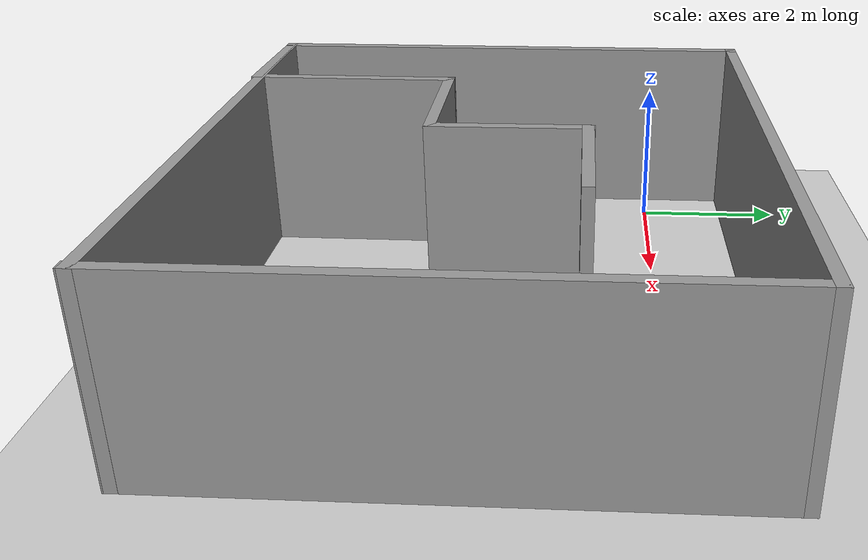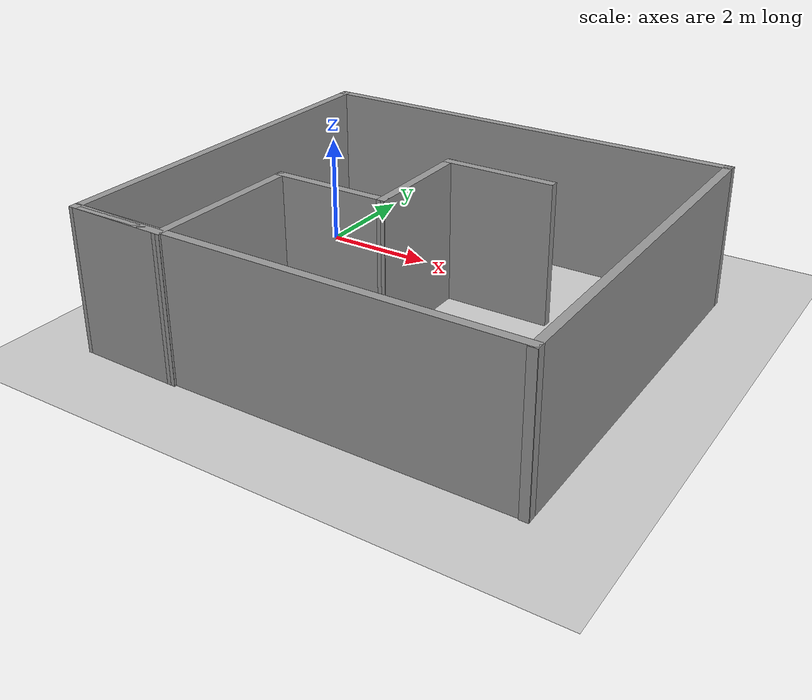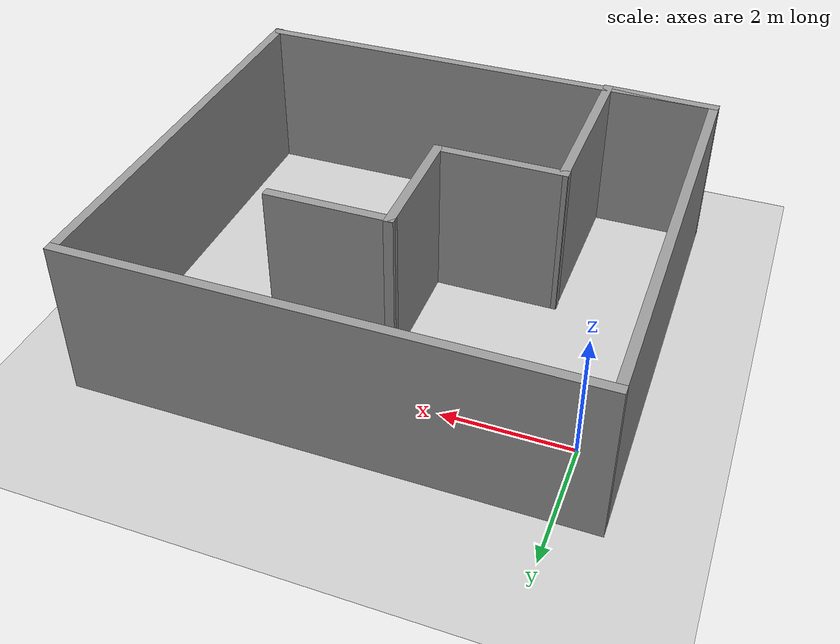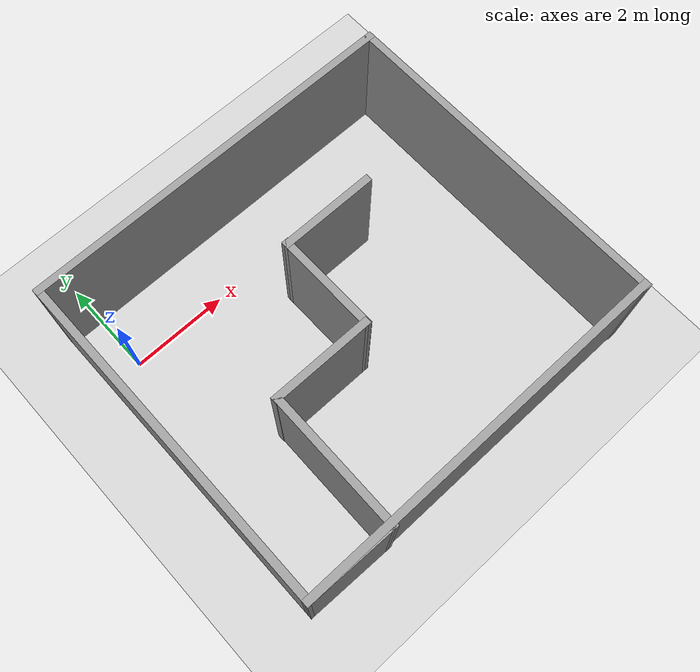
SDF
<sdf version="1.7">
 <world name="default">
  <light name="sun" type="directional">
   <pose>0 0 10 0 -0 0</pose>
   <diffuse>0.8 0.8 0.8 1</diffuse>
   <specular>0.2 0.2 0.2 1</specular>
   <attenuation>
    <range>1000</range>
    <constant>0.9</constant>
    <linear>0.01</linear>
    <quadratic>0.001</quadratic>
   </attenuation>
   <direction>-0.5 0.1 -0.9</direction>
   <spot><inner_angle>0</inner_angle><outer_angle>0</outer_angle><falloff>0</falloff></spot>
  </light>
  <model name="ground_plane">
   <static>1</static>
   <link name="link">
    <collision name="collision">
     <geometry><plane><normal>0 0 1</normal><size>100 100</size></plane></geometry>
     <surface>
      <contact><collide_bitmask>65535</collide_bitmask></contact>
      <friction><ode><mu>100</mu><mu2>50</mu2></ode></friction>
     </surface>
    </collision>
    <visual name="visual">
     <cast_shadows>0</cast_shadows>
     <geometry><plane><normal>0 0 1</normal><size>100 100</size></plane></geometry>
     <material>
      <script><uri>file://media/materials/scripts/gazebo.material</uri><name>Gazebo/Grey</name></script>
     </material>
    </visual>
   </link>
  </model>
  <gravity>0 0 -9.8</gravity>
  <magnetic_field>6e-06 2.3e-05 -4.2e-05</magnetic_field>
  <atmosphere type="adiabatic"/>
  <physics type="ode">
   <max_step_size>0.001</max_step_size>
   <real_time_factor>1</real_time_factor>
   <real_time_update_rate>1000</real_time_update_rate>
  </physics>
  <scene><ambient>0.4 0.4 0.4 1</ambient><background>0.7 0.7 0.7 1</background><shadows>1</shadows></scene>
  <spherical_coordinates>
   <surface_model>EARTH_WGS84</surface_model>
   <latitude_deg>0</latitude_deg>
   <longitude_deg>0</longitude_deg>
   <elevation>0</elevation>
   <heading_deg>0</heading_deg>
  </spherical_coordinates>
  <model name="my_map.world">
   <pose>3.23267 -2.20045 0 0 -0 0</pose>
   <link name="Wall_1">
    <collision name="Wall_1_Collision">
     <geometry><box><size>7.83148 0.15 2.5</size></box></geometry>
     <pose>0 0 1.25 0 -0 0</pose>
    </collision>
    <visual name="Wall_1_Visual">
     <pose>0 0 1.25 0 -0 0</pose>
     <geometry><box><size>7.83148 0.15 2.5</size></box></geometry>
     <material>
      <script><uri>file://media/materials/scripts/gazebo.material</uri><name>Gazebo/Grey</name></script>
      <ambient>1 1 1 1</ambient>
     </material>
     <meta><layer>0</layer></meta>
    </visual>
    <pose>0.000773 3.44426 0 0 -0 0</pose>
   </link>
   <link name="Wall_10">
    <collision name="Wall_10_Collision">
     <geometry><box><size>1.87631 0.15 2.5</size></box></geometry>
     <pose>0 0 1.25 0 -0 0</pose>
    </collision>
    <visual name="Wall_10_Visual">
     <pose>0 0 1.25 0 -0 0</pose>
     <geometry><box><size>1.87631 0.15 2.5</size></box></geometry>
     <material>
      <script><uri>file://media/materials/scripts/gazebo.material</uri><name>Gazebo/Grey</name></script>
      <ambient>1 1 1 1</ambient>
     </material>
     <meta><layer>0</layer></meta>
    </visual>
    <pose>-2.97697 -3.42421 0 0 -0 -0.021391</pose>
   </link>
   <link name="Wall_11">
    <collision name="Wall_11_Collision">
     <geometry><box><size>2.88882 0.15 2.5</size></box></geometry>
     <pose>0 0 1.25 0 -0 0</pose>
    </collision>
    <visual name="Wall_11_Visual">
     <pose>0 0 1.25 0 -0 0</pose>
     <geometry><box><size>2.88882 0.15 2.5</size></box></geometry>
     <material>
      <script><uri>file://media/materials/scripts/gazebo.material</uri><name>Gazebo/Grey</name></script>
      <ambient>1 1 1 1</ambient>
     </material>
     <meta><layer>0</layer></meta>
    </visual>
    <pose>-2.1039 -2.07329 0 0 -0 1.56341</pose>
   </link>
   <link name="Wall_15">
    <collision name="Wall_15_Collision">
     <geometry><box><size>2.11397 0.15 2.5</size></box></geometry>
     <pose>0 0 1.25 0 -0 0</pose>
    </collision>
    <visual name="Wall_15_Visual">
     <pose>0 0 1.25 0 -0 0</pose>
     <geometry><box><size>2.11397 0.15 2.5</size></box></geometry>
     <material>
      <script><uri>file://media/materials/scripts/gazebo.material</uri><name>Gazebo/Grey</name></script>
      <ambient>1 1 1 1</ambient>
     </material>
     <meta><layer>0</layer></meta>
    </visual>
    <pose>-1.12191 -0.705687 0 0 -0 -0.001798</pose>
   </link>
   <link name="Wall_16">
    <collision name="Wall_16_Collision">
     <geometry><box><size>2.12139 0.15 2.5</size></box></geometry>
     <pose>0 0 1.25 0 -0 0</pose>
    </collision>
    <visual name="Wall_16_Visual">
     <pose>0 0 1.25 0 -0 0</pose>
     <geometry><box><size>2.12139 0.15 2.5</size></box></geometry>
     <material>
      <script><uri>file://media/materials/scripts/gazebo.material</uri><name>Gazebo/Grey</name></script>
      <ambient>1 1 1 1</ambient>
     </material>
     <meta><layer>0</layer></meta>
    </visual>
    <pose>-0.134867 0.278231 0 0 -0 1.57593</pose>
   </link>
   <link name="Wall_17">
    <collision name="Wall_17_Collision">
     <geometry><box><size>2 0.15 2.5</size></box></geometry>
     <pose>0 0 1.25 0 -0 0</pose>
    </collision>
    <visual name="Wall_17_Visual">
     <pose>0 0 1.25 0 -0 0</pose>
     <geometry><box><size>2 0.15 2.5</size></box></geometry>
     <material>
      <script><uri>file://media/materials/scripts/gazebo.material</uri><name>Gazebo/Grey</name></script>
      <ambient>1 1 1 1</ambient>
     </material>
     <meta><layer>0</layer></meta>
    </visual>
    <pose>0.785076 1.2538 0 0 -0 0</pose>
   </link>
   <link name="Wall_6">
    <collision name="Wall_6_Collision">
     <geometry><box><size>7 0.15 2.5</size></box></geometry>
     <pose>0 0 1.25 0 -0 0</pose>
    </collision>
    <visual name="Wall_6_Visual">
     <pose>0 0 1.25 0 -0 0</pose>
     <geometry><box><size>7 0.15 2.5</size></box></geometry>
     <material>
      <script><uri>file://media/materials/scripts/gazebo.material</uri><name>Gazebo/Grey</name></script>
      <ambient>1 1 1 1</ambient>
     </material>
     <meta><layer>0</layer></meta>
    </visual>
    <pose>-3.83992 0.019256 0 0 -0 -1.5708</pose>
   </link>
   <link name="Wall_7">
    <collision name="Wall_7_Collision">
     <geometry><box><size>7.83148 0.15 2.5</size></box></geometry>
     <pose>0 0 1.25 0 -0 0</pose>
    </collision>
    <visual name="Wall_7_Visual">
     <pose>0 0 1.25 0 -0 0</pose>
     <geometry><box><size>7.83148 0.15 2.5</size></box></geometry>
     <material>
      <script><uri>file://media/materials/scripts/gazebo.material</uri><name>Gazebo/Grey</name></script>
      <ambient>1 1 1 1</ambient>
     </material>
     <meta><layer>0</layer></meta>
    </visual>
    <pose>0.000773 -3.40574 0 0 -0 0</pose>
   </link>
   <link name="Wall_8">
    <collision name="Wall_8_Collision">
     <geometry><box><size>7 0.15 2.5</size></box></geometry>
     <pose>0 0 1.25 0 -0 0</pose>
    </collision>
    <visual name="Wall_8_Visual">
     <pose>0 0 1.25 0 -0 0</pose>
     <geometry><box><size>7 0.15 2.5</size></box></geometry>
     <material>
      <script><uri>file://media/materials/scripts/gazebo.material</uri><name>Gazebo/Grey</name></script>
      <ambient>1 1 1 1</ambient>
     </material>
     <meta><layer>0</layer></meta>
    </visual>
    <pose>3.84147 0.001567 0 0 -0 1.5708</pose>
   </link>
   <static>1</static>
  </model>
 </world>
</sdf>
